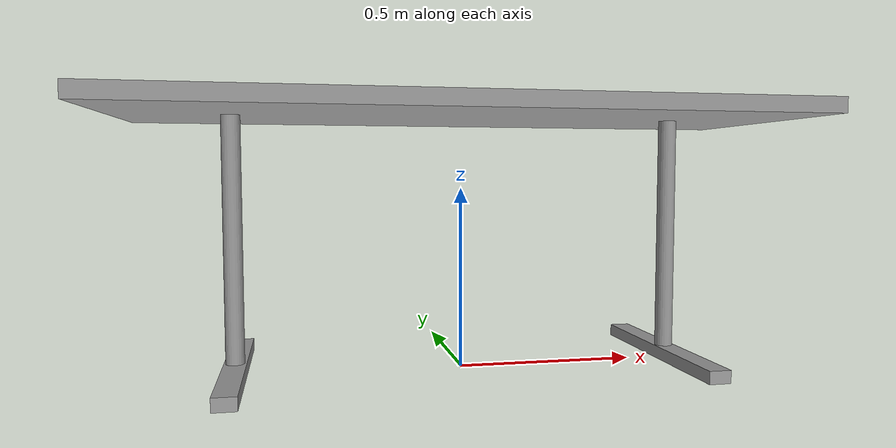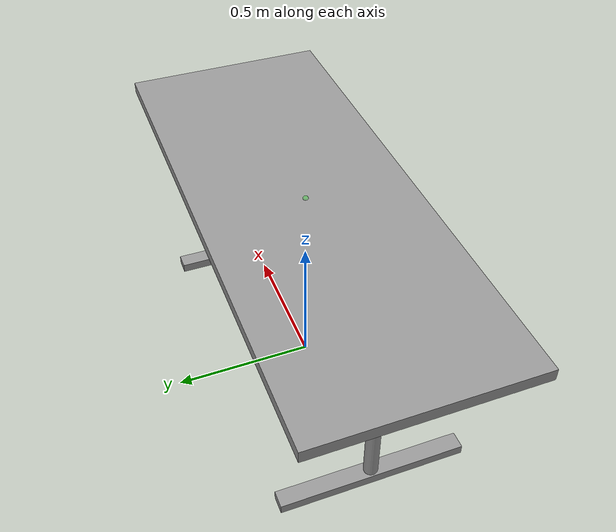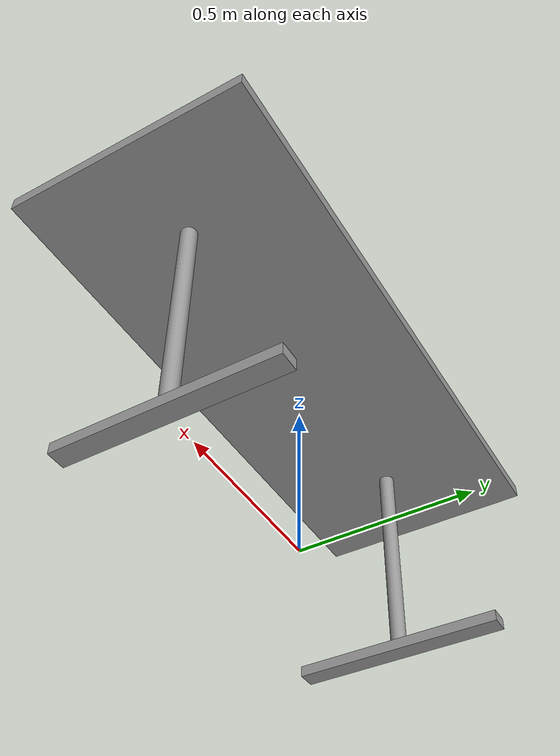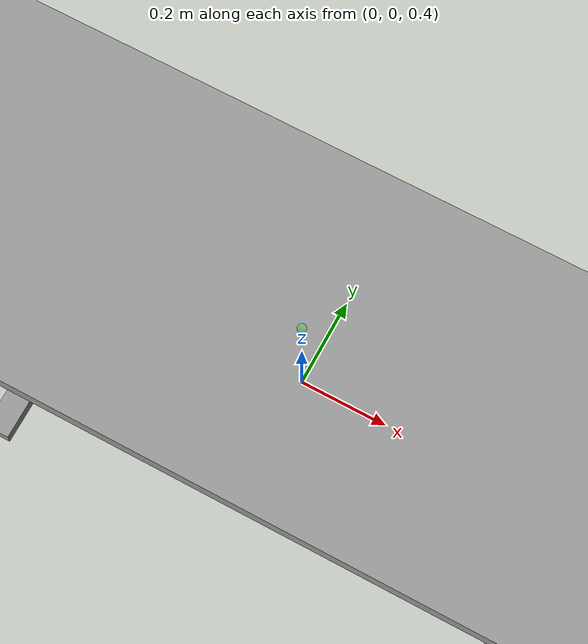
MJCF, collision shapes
<mujoco model="ada_table">
  <asset>
    <mesh name="ada_table_visual" file="ada_table.stl"/>
    <material name="ada_table_surface" rgba="0.85 0.82 0.78 1"/>
  </asset>

  <default>
    <default class="ada_table_visual">
      <geom contype="0" conaffinity="0" group="2"
            mass="0" material="ada_table_surface"/>
    </default>
    <default class="ada_table_collision">
      <geom contype="1" conaffinity="1" group="3"
            friction="0.8 0.005 0.0001"
            rgba="0.6 0.6 0.6 0.3"/>
    </default>
  </default>

  <worldbody>
    <body name="ada_table">
      <!-- Visual mesh (no collision) -->
      <geom type="mesh" mesh="ada_table_visual" class="ada_table_visual"/>

      <!-- Collision: top slab -->
      <geom name="ada_table_top" type="box" class="ada_table_collision"
            pos="0 0 0.714" size="0.926 0.371 0.021" mass="10"/>

      <!-- Collision: perpendicular feet at each end -->
      <geom name="ada_table_base_left" type="box" class="ada_table_collision"
            pos="-0.614 0 0.0175" size="0.030 0.330 0.0175" mass="1.5"/>
      <geom name="ada_table_base_right" type="box" class="ada_table_collision"
            pos=" 0.614 0 0.0175" size="0.030 0.330 0.0175" mass="1.5"/>

      <!-- Collision: vertical support columns -->
      <geom name="ada_table_column_left" type="cylinder" class="ada_table_collision"
            pos="-0.614 0 0.364" size="0.025 0.329" mass="1.0"/>
      <geom name="ada_table_column_right" type="cylinder" class="ada_table_collision"
            pos=" 0.614 0 0.364" size="0.025 0.329" mass="1.0"/>

      <!-- Surface site: center of the table top, for placing objects -->
      <site name="table_surface" pos="0 0 0.735" size="0.01"
            rgba="0 1 0 0.3"/>
    </body>
  </worldbody>
</mujoco>
